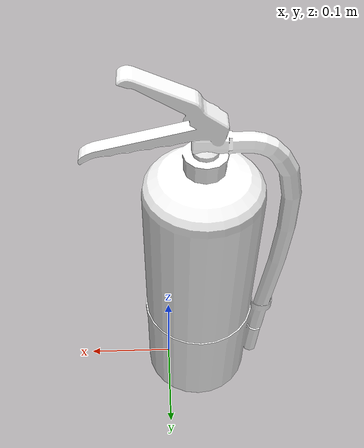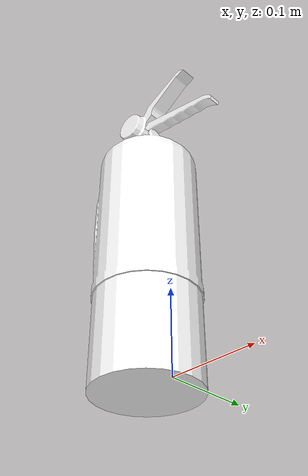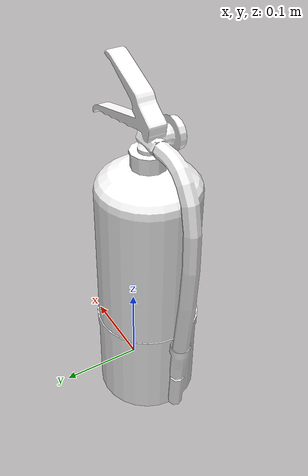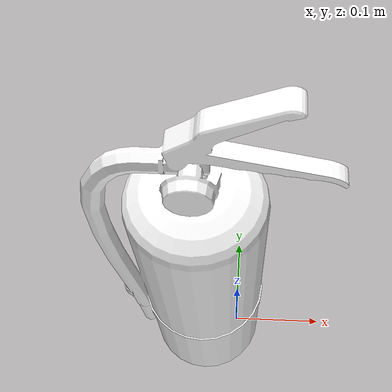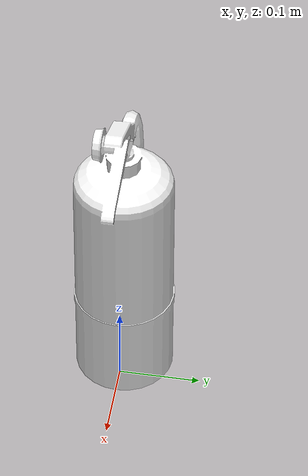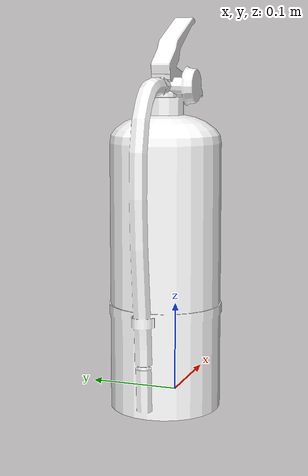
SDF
<?xml version='1.0' ?>
<sdf version="1.6">
    <model name="fire_extinguisher">
        <static>true</static>
        <link name="link">
            <collision name="collision">
                <geometry>
                    <mesh>
                        <uri>model://models/fire_extinguisher/meshes/extinguisher.dae</uri>
                    </mesh>
                </geometry>
            </collision>
            <visual name="visual">
                <geometry>
                    <mesh>
                        <uri>model://models/fire_extinguisher/meshes/extinguisher.dae</uri>
                    </mesh>
                </geometry>
                <material>
                    <diffuse>1.0 1.0 1.0</diffuse>
                    <specular>1.0 1.0 1.0</specular>
                    <pbr>
                        <metal>
                            <albedo_map>https://fuel.ignitionrobotics.org/1.0/chapulina/models/Extinguisher PBR/1/files/materials/textures/extinguisher_albedo.png</albedo_map>
                            <normal_map>https://fuel.ignitionrobotics.org/1.0/chapulina/models/Extinguisher PBR/1/files/materials/textures/extinguisher_normal.png</normal_map>
                            <metalness_map>https://fuel.ignitionrobotics.org/1.0/chapulina/models/Extinguisher PBR/1/files/materials/textures/extinguisher_metalness.png</metalness_map>
                            <roughness_map>https://fuel.ignitionrobotics.org/1.0/chapulina/models/Extinguisher PBR/1/files/materials/textures/extinguisher_roughness.png</roughness_map>
                            <environment_map>https://fuel.ignitionrobotics.org/1.0/chapulina/models/Extinguisher PBR/1/files/materials/textures/fort_point.dds</environment_map>
                        </metal>
                    </pbr>
                </material>
            </visual>
        </link>
    </model>
</sdf>
